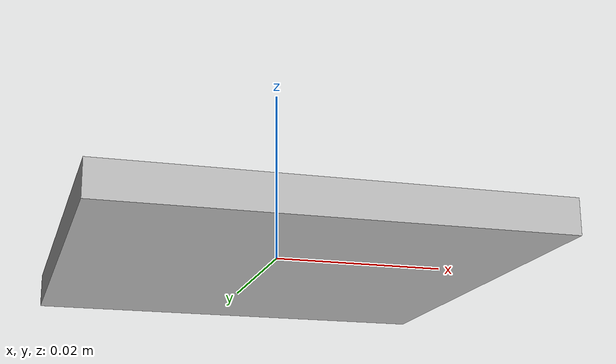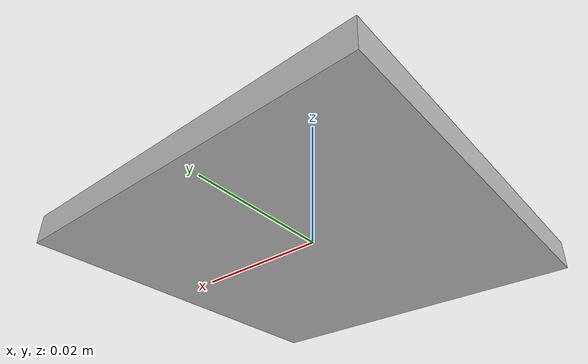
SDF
<?xml version="1.0" ?>
<sdf version="1.4">
  <model name="aruco_flat">
    <static>0</static>
    <link name="link">

      <inertial>
        <mass>0.01</mass>
        <inertia>
          <ixx>0.000052083</ixx>
          <ixy>0.0</ixy>
          <ixz>0.0</ixz>
          <iyy>0.000052083</iyy>
          <iyz>0.0</iyz>
          <izz>0.000001</izz>
        </inertia>
      </inertial>

      <collision name="colision">
        <pose>0 0 0 0 0 0</pose>
          <geometry>
            <box>
              <size>0.05 0.05 0.001</size>
            </box>
          </geometry>
        <surface>
          <friction>
            <ode>
              <mu>30.0</mu>
              <mu2>30.0</mu2>
              <fdir1>0 0 0</fdir1>
            </ode>
          </friction>
          <contact>
            <ode>
              <kp>1000000.0</kp>
              <kd>100.0</kd>
              <min_depth>0.0025</min_depth>
              <max_vel>1.0</max_vel>
            </ode>
          </contact>
        </surface>
      </collision>

      <visual name="visual1">
        <pose>0 0 0 0 0 0</pose>
        <geometry>
          <mesh>
            <uri>model://aruco_flat/meshes/aruco_flat_5cm.dae</uri>
	    <scale> 1 1 2 </scale>
          </mesh>
        </geometry>
      </visual>

      <velocity_decay>
        <linear>0.000000</linear>
        <angular>0.000000</angular>
      </velocity_decay>
      <self_collide>0</self_collide>
      <kinematic>0</kinematic>
      <gravity>1</gravity>
    </link>
  </model>
</sdf>
